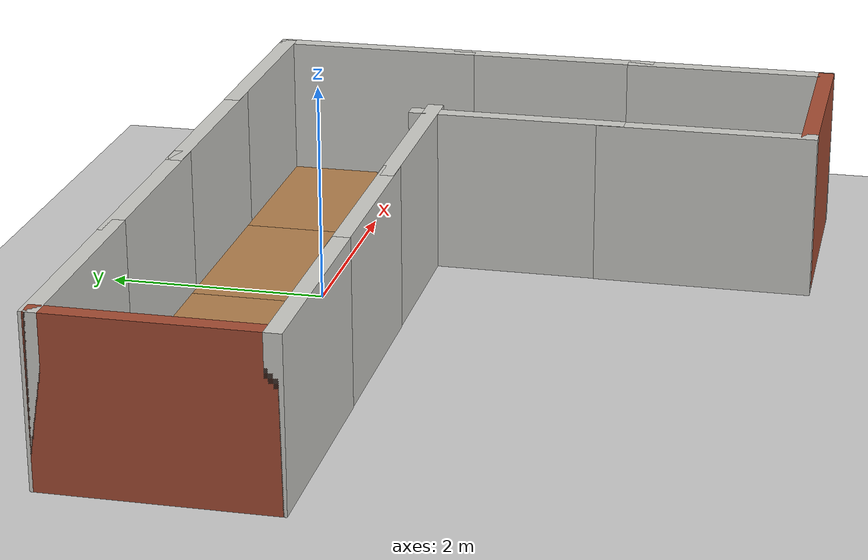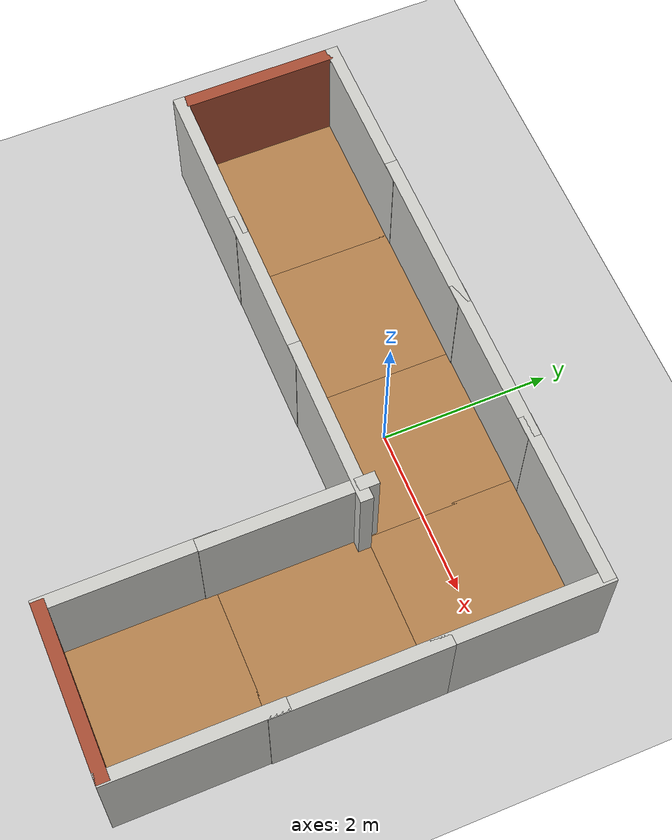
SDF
<sdf version="1.6">
 <world name="default">
  <light name="sun" type="directional">
   <pose>0 0 10 0 -0 0</pose>
   <diffuse>0.8 0.8 0.8 1</diffuse>
   <specular>0.1 0.1 0.1 1</specular>
   <attenuation>
    <range>1000</range>
    <constant>0.9</constant>
    <linear>0.01</linear>
    <quadratic>0.001</quadratic>
   </attenuation>
   <direction>-0.5 0.5 -1</direction>
  </light>
  <model name="ground_plane">
   <static>1</static>
   <link name="link">
    <collision name="collision">
     <geometry><plane><normal>0 0 1</normal><size>100 100</size></plane></geometry>
     <surface><friction><ode><mu>100</mu><mu2>50</mu2></ode></friction></surface>
    </collision>
    <visual name="visual">
     <cast_shadows>0</cast_shadows>
     <geometry><plane><normal>0 0 1</normal><size>100 100</size></plane></geometry>
     <material>
      <script><uri>file://media/materials/scripts/gazebo.material</uri><name>Gazebo/Grey</name></script>
     </material>
    </visual>
   </link>
  </model>
  <gravity>0 0 -9.8</gravity>
  <magnetic_field>6e-06 2.3e-05 -4.2e-05</magnetic_field>
  <atmosphere type="adiabatic"/>
  <physics name="default_physics" default="0" type="ode">
   <max_step_size>0.001</max_step_size>
   <real_time_factor>1</real_time_factor>
   <real_time_update_rate>1000</real_time_update_rate>
  </physics>
  <scene><ambient>0.4 0.4 0.4 1</ambient><background>0.7 0.7 0.7 1</background><shadows>1</shadows></scene>
  <spherical_coordinates>
   <surface_model>EARTH_WGS84</surface_model>
   <latitude_deg>0</latitude_deg>
   <longitude_deg>0</longitude_deg>
   <elevation>0</elevation>
   <heading_deg>0</heading_deg>
  </spherical_coordinates>
  <model name="nervemaze_end">
   <pose>1.99177 -3.33714 0 0 -0 3.14159</pose>
   <link name="Wall_0">
    <collision name="Wall_0_Collision">
     <geometry><box><size>1.76 1.75 0.2</size></box></geometry>
     <pose>0 0 0.1 0 -0 0</pose>
    </collision>
    <visual name="Wall_0_Visual">
     <pose>0 0 0.1 0 -0 0</pose>
     <geometry><box><size>1.76 1.75 0.2</size></box></geometry>
     <material>
      <script><uri>file://media/materials/scripts/gazebo.material</uri><name>Gazebo/Wood</name></script>
      <ambient>1 0.764706 0.305882 1</ambient>
     </material>
    </visual>
    <pose>0.002 -0.003 0 0 0 -1.5708</pose>
   </link>
   <link name="Wall_2">
    <collision name="Wall_2_Collision">
     <geometry><box><size>2 0.15 1.5</size></box></geometry>
     <pose>0 0 0.75 0 -0 0</pose>
    </collision>
    <visual name="Wall_2_Visual">
     <pose>0 0 0.75 0 -0 0</pose>
     <geometry><box><size>2 0.15 1.5</size></box></geometry>
     <material>
      <script><uri>file://media/materials/scripts/gazebo.material</uri><name>Gazebo/CeilingTiled</name></script>
      <ambient>1 0.764706 0.305882 1</ambient>
     </material>
    </visual>
    <pose>0.95 0 0 0 0 -1.5708</pose>
   </link>
   <link name="Wall_4">
    <collision name="Wall_4_Collision">
     <geometry><box><size>2 0.15 1.5</size></box></geometry>
     <pose>0 0 0.75 0 -0 0</pose>
    </collision>
    <visual name="Wall_4_Visual">
     <pose>0 0 0.75 0 -0 0</pose>
     <geometry><box><size>2 0.15 1.5</size></box></geometry>
     <material>
      <script><uri>file://media/materials/scripts/gazebo.material</uri><name>Gazebo/CeilingTiled</name></script>
      <ambient>1 0.764706 0.305882 1</ambient>
     </material>
    </visual>
    <pose>-0.95 0 0 0 0 -1.5708</pose>
   </link>
   <link name="Wall_6">
    <collision name="Wall_6_Collision">
     <geometry><box><size>2 0.15 1.5</size></box></geometry>
     <pose>0 0 0.75 0 -0 0</pose>
    </collision>
    <visual name="Wall_6_Visual">
     <pose>0 0 0.75 0 -0 0</pose>
     <geometry><box><size>2 0.15 1.5</size></box></geometry>
     <material>
      <script><uri>file://media/materials/scripts/gazebo.material</uri><name>Gazebo/Bricks</name></script>
      <ambient>0.996078 0.47451 0.0196078 1</ambient>
     </material>
    </visual>
    <pose>-0.005 0.925 0 0 -0 0</pose>
   </link>
   <static>1</static>
  </model>
  <model name="nervemaze_straight">
   <pose>1.99901 -1.58661 0 0 -0 0</pose>
   <link name="Wall_0">
    <collision name="Wall_0_Collision">
     <geometry><box><size>1.76 1.75 0.2</size></box></geometry>
     <pose>0 0 0.1 0 -0 0</pose>
    </collision>
    <visual name="Wall_0_Visual">
     <pose>0 0 0.1 0 -0 0</pose>
     <geometry><box><size>1.76 1.75 0.2</size></box></geometry>
     <material>
      <script><uri>file://media/materials/scripts/gazebo.material</uri><name>Gazebo/Wood</name></script>
      <ambient>1 0.764706 0.305882 1</ambient>
     </material>
    </visual>
    <pose>0.002 -0.003 0 0 0 -1.5708</pose>
   </link>
   <link name="Wall_2">
    <collision name="Wall_2_Collision">
     <geometry><box><size>2 0.15 1.5</size></box></geometry>
     <pose>0 0 0.75 0 -0 0</pose>
    </collision>
    <visual name="Wall_2_Visual">
     <pose>0 0 0.75 0 -0 0</pose>
     <geometry><box><size>2 0.15 1.5</size></box></geometry>
     <material>
      <script><uri>file://media/materials/scripts/gazebo.material</uri><name>Gazebo/CeilingTiled</name></script>
      <ambient>1 0.764706 0.305882 1</ambient>
     </material>
    </visual>
    <pose>0.95 0 0 0 0 -1.5708</pose>
   </link>
   <link name="Wall_4">
    <collision name="Wall_4_Collision">
     <geometry><box><size>2 0.15 1.5</size></box></geometry>
     <pose>0 0 0.75 0 -0 0</pose>
    </collision>
    <visual name="Wall_4_Visual">
     <pose>0 0 0.75 0 -0 0</pose>
     <geometry><box><size>2 0.15 1.5</size></box></geometry>
     <material>
      <script><uri>file://media/materials/scripts/gazebo.material</uri><name>Gazebo/CeilingTiled</name></script>
      <ambient>1 0.764706 0.305882 1</ambient>
     </material>
    </visual>
    <pose>-0.95 0 0 0 0 -1.5708</pose>
   </link>
   <static>1</static>
  </model>
  <model name="nervemaze_corner">
   <pose>2.00759 0.192346 0 0 0 -1.5708</pose>
   <link name="Wall_0">
    <collision name="Wall_0_Collision">
     <geometry><box><size>1.76 1.75 0.2</size></box></geometry>
     <pose>0 0 0.1 0 -0 0</pose>
    </collision>
    <visual name="Wall_0_Visual">
     <pose>0 0 0.1 0 -0 0</pose>
     <geometry><box><size>1.76 1.75 0.2</size></box></geometry>
     <material>
      <script><uri>file://media/materials/scripts/gazebo.material</uri><name>Gazebo/Wood</name></script>
      <ambient>1 0.764706 0.305882 1</ambient>
     </material>
    </visual>
    <pose>0.027 -0.018 0 0 0 -1.5708</pose>
   </link>
   <link name="Wall_4">
    <collision name="Wall_4_Collision">
     <geometry><box><size>2 0.15 1.5</size></box></geometry>
     <pose>0 0 0.75 0 -0 0</pose>
    </collision>
    <visual name="Wall_4_Visual">
     <pose>0 0 0.75 0 -0 0</pose>
     <geometry><box><size>2 0.15 1.5</size></box></geometry>
     <material>
      <script><uri>file://media/materials/scripts/gazebo.material</uri><name>Gazebo/CeilingTiled</name></script>
      <ambient>1 0.764706 0.305882 1</ambient>
     </material>
    </visual>
    <pose>-0.925 -0.015 0 0 0 -1.5708</pose>
   </link>
   <link name="Wall_6">
    <collision name="Wall_6_Collision">
     <geometry><box><size>2 0.15 1.5</size></box></geometry>
     <pose>0 0 0.75 0 -0 0</pose>
    </collision>
    <visual name="Wall_6_Visual">
     <pose>0 0 0.75 0 -0 0</pose>
     <geometry><box><size>2 0.15 1.5</size></box></geometry>
     <material>
      <script><uri>file://media/materials/scripts/gazebo.material</uri><name>Gazebo/CeilingTiled</name></script>
      <ambient>1 0.764706 0.305882 1</ambient>
     </material>
    </visual>
    <pose>0 0.94 0 0 -0 0</pose>
   </link>
   <static>1</static>
  </model>
  <model name="nervemaze_straight_0">
   <pose>0.251363 0.164141 0 0 -0 1.5708</pose>
   <link name="Wall_0">
    <collision name="Wall_0_Collision">
     <geometry><box><size>1.76 1.75 0.2</size></box></geometry>
     <pose>0 0 0.1 0 -0 0</pose>
    </collision>
    <visual name="Wall_0_Visual">
     <pose>0 0 0.1 0 -0 0</pose>
     <geometry><box><size>1.76 1.75 0.2</size></box></geometry>
     <material>
      <script><uri>file://media/materials/scripts/gazebo.material</uri><name>Gazebo/Wood</name></script>
      <ambient>1 0.764706 0.305882 1</ambient>
     </material>
    </visual>
    <pose>0.002 -0.003 0 0 0 -1.5708</pose>
   </link>
   <link name="Wall_2">
    <collision name="Wall_2_Collision">
     <geometry><box><size>2 0.15 1.5</size></box></geometry>
     <pose>0 0 0.75 0 -0 0</pose>
    </collision>
    <visual name="Wall_2_Visual">
     <pose>0 0 0.75 0 -0 0</pose>
     <geometry><box><size>2 0.15 1.5</size></box></geometry>
     <material>
      <script><uri>file://media/materials/scripts/gazebo.material</uri><name>Gazebo/CeilingTiled</name></script>
      <ambient>1 0.764706 0.305882 1</ambient>
     </material>
    </visual>
    <pose>0.95 0 0 0 0 -1.5708</pose>
   </link>
   <link name="Wall_4">
    <collision name="Wall_4_Collision">
     <geometry><box><size>2 0.15 1.5</size></box></geometry>
     <pose>0 0 0.75 0 -0 0</pose>
    </collision>
    <visual name="Wall_4_Visual">
     <pose>0 0 0.75 0 -0 0</pose>
     <geometry><box><size>2 0.15 1.5</size></box></geometry>
     <material>
      <script><uri>file://media/materials/scripts/gazebo.material</uri><name>Gazebo/CeilingTiled</name></script>
      <ambient>1 0.764706 0.305882 1</ambient>
     </material>
    </visual>
    <pose>-0.95 0 0 0 0 -1.5708</pose>
   </link>
   <static>1</static>
  </model>
  <model name="nervemaze_straight_1">
   <pose>-1.503 0.160126 0 0 -0 1.5708</pose>
   <link name="Wall_0">
    <collision name="Wall_0_Collision">
     <geometry><box><size>1.76 1.75 0.2</size></box></geometry>
     <pose>0 0 0.1 0 -0 0</pose>
    </collision>
    <visual name="Wall_0_Visual">
     <pose>0 0 0.1 0 -0 0</pose>
     <geometry><box><size>1.76 1.75 0.2</size></box></geometry>
     <material>
      <script><uri>file://media/materials/scripts/gazebo.material</uri><name>Gazebo/Wood</name></script>
      <ambient>1 0.764706 0.305882 1</ambient>
     </material>
    </visual>
    <pose>0.002 -0.003 0 0 0 -1.5708</pose>
   </link>
   <link name="Wall_2">
    <collision name="Wall_2_Collision">
     <geometry><box><size>2 0.15 1.5</size></box></geometry>
     <pose>0 0 0.75 0 -0 0</pose>
    </collision>
    <visual name="Wall_2_Visual">
     <pose>0 0 0.75 0 -0 0</pose>
     <geometry><box><size>2 0.15 1.5</size></box></geometry>
     <material>
      <script><uri>file://media/materials/scripts/gazebo.material</uri><name>Gazebo/CeilingTiled</name></script>
      <ambient>1 0.764706 0.305882 1</ambient>
     </material>
    </visual>
    <pose>0.95 0 0 0 0 -1.5708</pose>
   </link>
   <link name="Wall_4">
    <collision name="Wall_4_Collision">
     <geometry><box><size>2 0.15 1.5</size></box></geometry>
     <pose>0 0 0.75 0 -0 0</pose>
    </collision>
    <visual name="Wall_4_Visual">
     <pose>0 0 0.75 0 -0 0</pose>
     <geometry><box><size>2 0.15 1.5</size></box></geometry>
     <material>
      <script><uri>file://media/materials/scripts/gazebo.material</uri><name>Gazebo/CeilingTiled</name></script>
      <ambient>1 0.764706 0.305882 1</ambient>
     </material>
    </visual>
    <pose>-0.95 0 0 0 0 -1.5708</pose>
   </link>
   <static>1</static>
  </model>
  <model name="nervemaze_end_0">
   <pose>-3.25271 0.156347 0 0 -0 1.5708</pose>
   <link name="Wall_0">
    <collision name="Wall_0_Collision">
     <geometry><box><size>1.76 1.75 0.2</size></box></geometry>
     <pose>0 0 0.1 0 -0 0</pose>
    </collision>
    <visual name="Wall_0_Visual">
     <pose>0 0 0.1 0 -0 0</pose>
     <geometry><box><size>1.76 1.75 0.2</size></box></geometry>
     <material>
      <script><uri>file://media/materials/scripts/gazebo.material</uri><name>Gazebo/Wood</name></script>
      <ambient>1 0.764706 0.305882 1</ambient>
     </material>
    </visual>
    <pose>0.002 -0.003 0 0 0 -1.5708</pose>
   </link>
   <link name="Wall_2">
    <collision name="Wall_2_Collision">
     <geometry><box><size>2 0.15 1.5</size></box></geometry>
     <pose>0 0 0.75 0 -0 0</pose>
    </collision>
    <visual name="Wall_2_Visual">
     <pose>0 0 0.75 0 -0 0</pose>
     <geometry><box><size>2 0.15 1.5</size></box></geometry>
     <material>
      <script><uri>file://media/materials/scripts/gazebo.material</uri><name>Gazebo/CeilingTiled</name></script>
      <ambient>1 0.764706 0.305882 1</ambient>
     </material>
    </visual>
    <pose>0.95 0 0 0 0 -1.5708</pose>
   </link>
   <link name="Wall_4">
    <collision name="Wall_4_Collision">
     <geometry><box><size>2 0.15 1.5</size></box></geometry>
     <pose>0 0 0.75 0 -0 0</pose>
    </collision>
    <visual name="Wall_4_Visual">
     <pose>0 0 0.75 0 -0 0</pose>
     <geometry><box><size>2 0.15 1.5</size></box></geometry>
     <material>
      <script><uri>file://media/materials/scripts/gazebo.material</uri><name>Gazebo/CeilingTiled</name></script>
      <ambient>1 0.764706 0.305882 1</ambient>
     </material>
    </visual>
    <pose>-0.95 0 0 0 0 -1.5708</pose>
   </link>
   <link name="Wall_6">
    <collision name="Wall_6_Collision">
     <geometry><box><size>2 0.15 1.5</size></box></geometry>
     <pose>0 0 0.75 0 -0 0</pose>
    </collision>
    <visual name="Wall_6_Visual">
     <pose>0 0 0.75 0 -0 0</pose>
     <geometry><box><size>2 0.15 1.5</size></box></geometry>
     <material>
      <script><uri>file://media/materials/scripts/gazebo.material</uri><name>Gazebo/Bricks</name></script>
      <ambient>0.996078 0.47451 0.0196078 1</ambient>
     </material>
    </visual>
    <pose>-0.005 0.925 0 0 -0 0</pose>
   </link>
   <static>1</static>
  </model>
 </world>
</sdf>
